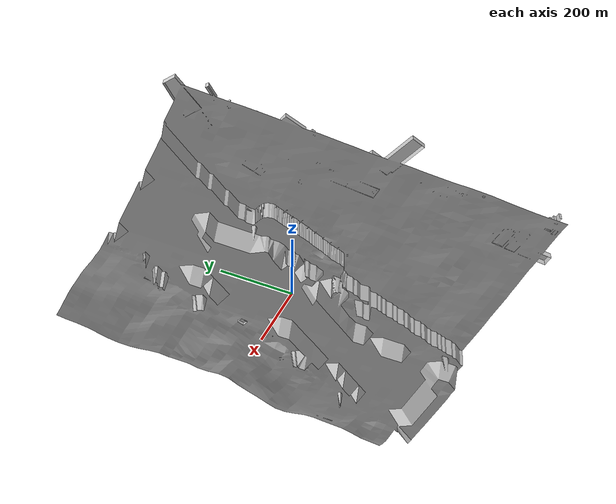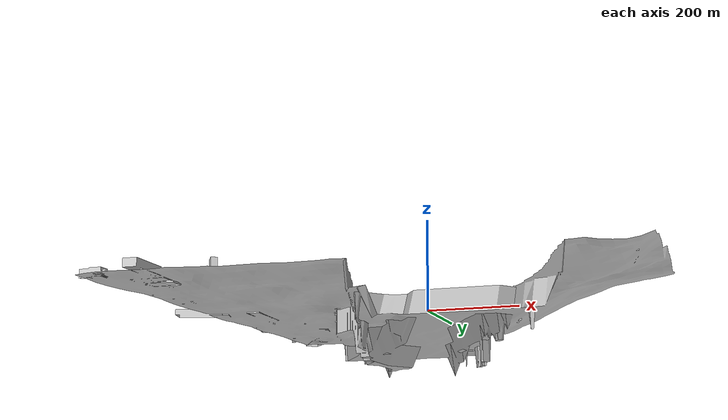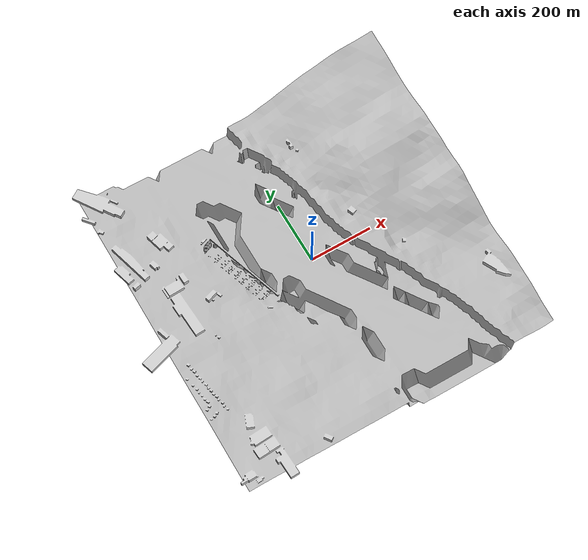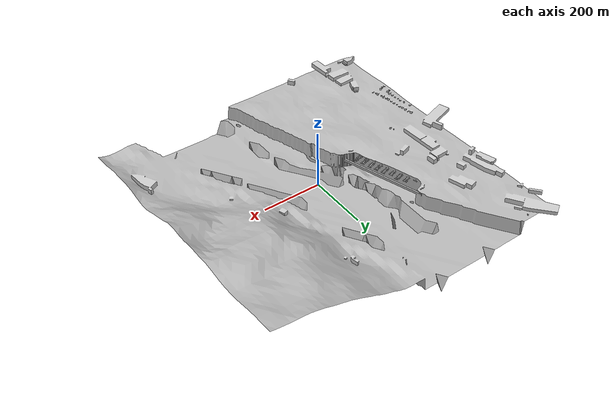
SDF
<?xml version="1.0" encoding="UTF-8"?>
<sdf version="1.6">
  <model name="linz">
    <static>true</static>
    <link name="link">
      <pose>0 0 0 0 0 0</pose>
      <visual name="visual">
        <geometry>
          <mesh>
            <uri>file://linz/meshes/linz_harbour.dae</uri>
          </mesh>
        </geometry>
      </visual>
      <collision name="collision">
        <geometry>
          <mesh>
            <uri>file://linz/meshes/linz_harbour.dae</uri>
          </mesh>
        </geometry>
      </collision>
    </link>
  </model>
</sdf>
